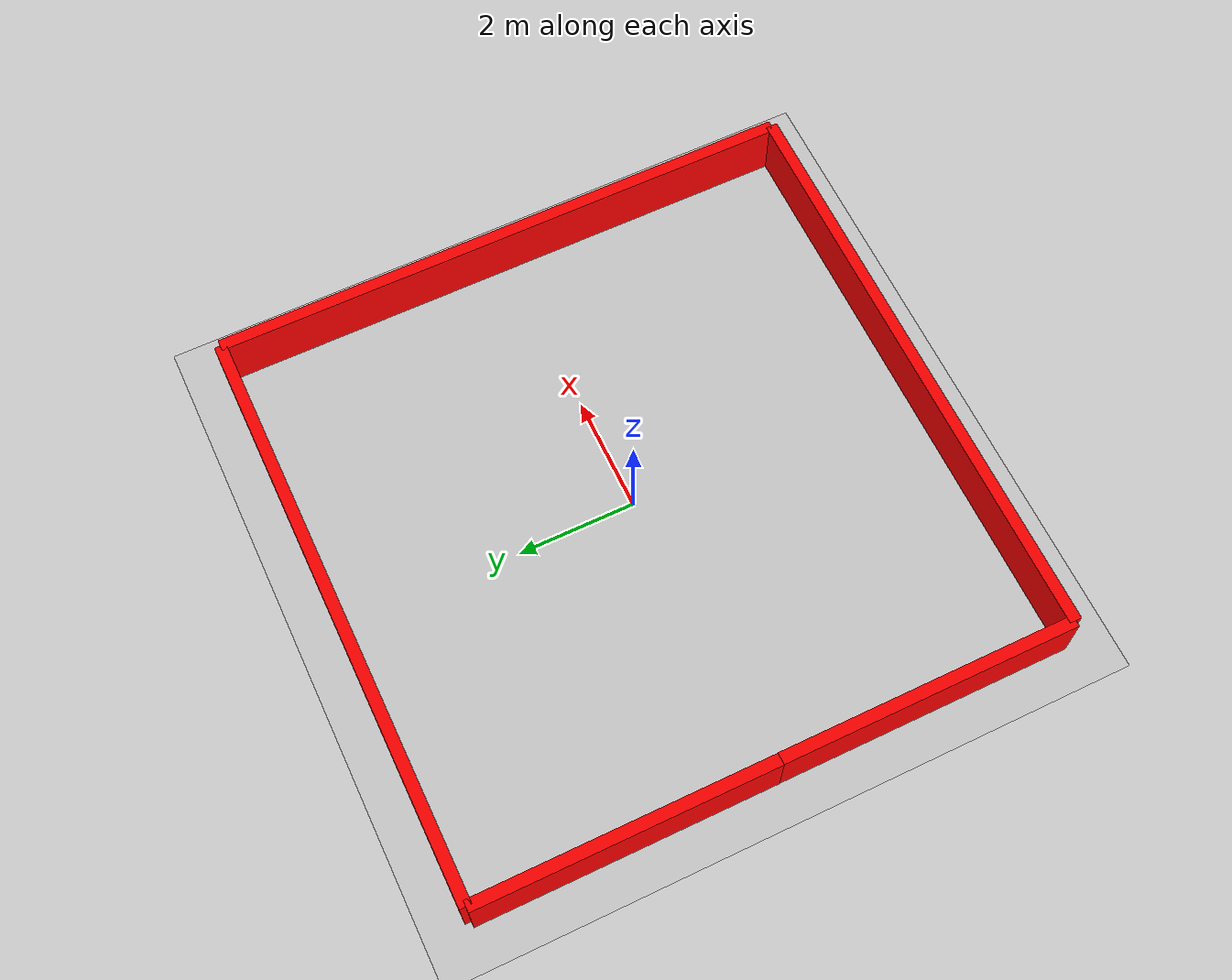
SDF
<sdf version="1.6">
 <world name="city">
  <physics name="default_physics" type="ode">
   <max_step_size>0.001</max_step_size>
   <real_time_factor>1.0</real_time_factor>
  </physics>
  <scene><ambient>0.4 0.4 0.4 1.0</ambient><background>0.7 0.7 0.7 1.0</background></scene>
  <model name="ground_plane">
   <static>true</static>
   <link name="link">
    <collision name="collision">
     <geometry><plane><normal>0 0 1</normal><size>10 10</size></plane></geometry>
    </collision>
    <visual name="visual">
     <geometry><plane><normal>0 0 1</normal><size>10 10</size></plane></geometry>
     <material><diffuse>0.8 0.8 0.8 1.0</diffuse></material>
    </visual>
   </link>
  </model>
  <model name="walls">
   <static>true</static>
   <link name="link">
    <collision name="north_wall_collision">
     <pose>0 5 0.5 0 0 0</pose>
     <geometry><box><size>10 0.2 1</size></box></geometry>
    </collision>
    <visual name="north_wall_visual">
     <pose>0 5 0.5 0 0 0</pose>
     <geometry><box><size>10 0.2 1</size></box></geometry>
     <material><diffuse>1 0 0 1</diffuse></material>
    </visual>
    <collision name="south_wall_collision">
     <pose>0 -5 0.5 0 0 0</pose>
     <geometry><box><size>10 0.2 1</size></box></geometry>
    </collision>
    <visual name="south_wall_visual">
     <pose>0 -5 0.5 0 0 0</pose>
     <geometry><box><size>10 0.2 1</size></box></geometry>
     <material><diffuse>1 0 0 1</diffuse></material>
    </visual>
    <collision name="east_wall_collision">
     <pose>5 0 0.5 0 0 1.57</pose>
     <geometry><box><size>10 0.2 1</size></box></geometry>
    </collision>
    <visual name="east_wall_visual">
     <pose>5 0 0.5 0 0 1.57</pose>
     <geometry><box><size>10 0.2 1</size></box></geometry>
     <material><diffuse>1 0 0 1</diffuse></material>
    </visual>
    <collision name="west_wall_collision1">
     <pose>-5 2.5 0.5 0 0 1.57</pose>
     <geometry><box><size>5 0.2 1</size></box></geometry>
    </collision>
    <visual name="west_wall_visual1">
     <pose>-5 2.5 0.5 0 0 1.57</pose>
     <geometry><box><size>5 0.2 1</size></box></geometry>
     <material><diffuse>1 0 0 1</diffuse></material>
    </visual>
    <collision name="west_wall_collision2">
     <pose>-5 -2.5 0.5 0 0 1.57</pose>
     <geometry><box><size>5 0.2 1</size></box></geometry>
    </collision>
    <visual name="west_wall_visual2">
     <pose>-5 -2.5 0.5 0 0 1.57</pose>
     <geometry><box><size>5 0.2 1</size></box></geometry>
     <material><diffuse>1 0 0 1</diffuse></material>
    </visual>
   </link>
  </model>
  <light name="sun" type="directional">
   <pose>0 0 10 0 0 0</pose>
   <diffuse>0.8 0.8 0.8 1</diffuse>
   <specular>0.2 0.2 0.2 1</specular>
   <direction>-0.5 0.1 -0.9</direction>
  </light>
 </world>
</sdf>
